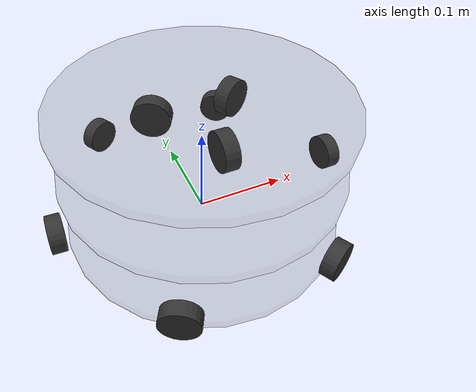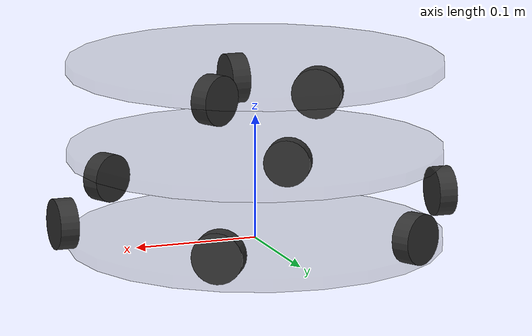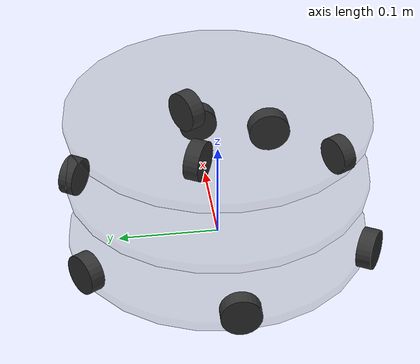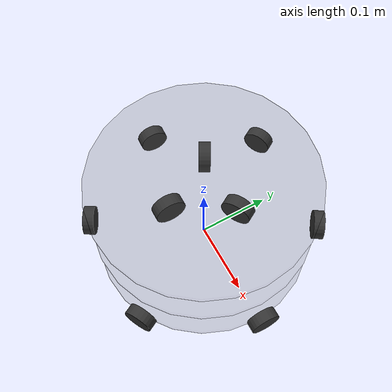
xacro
<?xml version="1.0"?>
<robot name="helix" xmlns:xacro="http://ros.org/wiki/xacro">
  <xacro:include filename="$(find helix_description)/urdf/helix.xacro" />
  <xacro:include filename="$(find helix_description)/urdf/helix.ros2_control.xacro" />

  <link name="world"/>

  <xacro:helix parent="world">
    <origin xyz="0 0 0" rpy="0 0 0" />
  </xacro:helix>

  <xacro:helix_ros2_control name="helix_ros2_control" />
</robot>

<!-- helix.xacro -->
<robot xmlns:xacro="http://ros.org/wiki/xacro">

<!-- Very basic representation of Helix motor base and pulleys -->
<!-- TODO - effort/velocity limits taken from dynamixel_hardware_examples package, not sure what they correpsond to wrt current-->

<material name='black'>
  <color rgba="0.2 0.2 0.2 1.0"/>
</material>
<material name='clear'>
  <color rgba="0.2 0.2 0.2 0.2"/>
</material>

<xacro:macro name="helix" params="parent *origin">
  <joint name="origin_to_base" type="fixed">
    <xacro:insert_block name="origin" />
    <parent link="${parent}" />
    <child link="base" />
    <axis xyz="0 0 1" />
  </joint>

  <!-- Base -->
  <link name="base">
    <visual>
      <origin xyz="0 0 0" rpy="0 0 0"/>
      <geometry>
        <cylinder length="0.01" radius="0.15"/>
      </geometry>
      <material name='clear'/>
    </visual>
    <visual>
      <origin xyz="0 0 0.07" rpy="0 0 0"/>
      <geometry>
        <cylinder length="0.01" radius="0.15"/>
      </geometry>
      <material name='clear'/>
    </visual>
     <visual>
      <origin xyz="0 0 0.14" rpy="0 0 0"/>
      <geometry>
        <cylinder length="0.01" radius="0.15"/>
      </geometry>
      <material name='clear'/>
    </visual>
  </link>

  <!-- Joint 0 -->
  <joint name="joint0" type="revolute">
    <parent link="base"/>
    <child link="link0"/>
    <origin xyz="-0.043 0.025 0.12" rpy="0 0 4.2"/>
    <axis xyz="1 0 0"/>
    <limit velocity="4.8" effort="1"/>
  </joint>

   <!-- Link 0 -->
  <link name="link0">
    <visual>
      <origin xyz="0 0 0" rpy="0 1.57 0"/>
      <geometry>
        <cylinder length="0.015" radius="0.02"/>
      </geometry>
      <material name="black"/>
    </visual>
  </link>

  <!-- Joint 1 -->
  <joint name="joint1" type="revolute">
    <parent link="base"/>
    <child link="link1"/>
    <origin xyz="0 -0.05 0.12" rpy="0 0 0"/>
    <axis xyz="1 0 0"/>
    <limit velocity="4.8" effort="1"/>
  </joint>

   <!-- Link 1 -->
  <link name="link1">
    <visual>
      <origin xyz="0 0 0" rpy="0 1.57 0"/>
      <geometry>
        <cylinder length="0.015" radius="0.02"/>
      </geometry>
      <material name="black"/>
    </visual>
  </link>

  <!-- Joint 2 -->
  <joint name="joint2" type="revolute">
    <parent link="base"/>
    <child link="link2"/>
    <origin xyz="0.043 0.025 0.12" rpy="0 0 2.1"/>
    <axis xyz="1 0 0"/>
    <limit velocity="4.8" effort="1"/>
  </joint>

   <!-- Link 2 -->
  <link name="link2">
    <visual>
      <origin xyz="0 0 0" rpy="0 1.57 0"/>
      <geometry>
        <cylinder length="0.015" radius="0.02"/>
      </geometry>
      <material name="black"/>
    </visual>
  </link>

  <!-- Joint 3 -->
  <joint name="joint3" type="revolute">
    <parent link="base"/>
    <child link="link3"/>
    <origin xyz="0.16 0 0.025" rpy="0 0 0"/>
    <axis xyz="1 0 0"/>
    <limit velocity="4.8" effort="1"/>
  </joint>

   <!-- Link 3 -->
  <link name="link3">
    <visual>
      <origin xyz="0 0 0" rpy="0 1.57 0"/>
      <geometry>
        <cylinder length="0.015" radius="0.02"/>
      </geometry>
      <material name="black"/>
    </visual>
  </link>

  <!-- Joint 4 -->
  <joint name="joint4" type="revolute">
    <parent link="base"/>
    <child link="link4"/>
    <origin xyz="-0.08 0.138 0.025" rpy="0 0 2.1"/>
    <axis xyz="1 0 0"/>
    <limit velocity="4.8" effort="1"/>
  </joint>

   <!-- Link 4 -->
  <link name="link4">
    <visual>
      <origin xyz="0 0 0" rpy="0 1.57 0"/>
      <geometry>
        <cylinder length="0.015" radius="0.02"/>
      </geometry>
      <material name="black"/>
    </visual>
  </link>

  <!-- Joint 5 -->
  <joint name="joint5" type="revolute">
    <parent link="base"/>
    <child link="link5"/>
    <origin xyz="-0.08 -0.138 0.025" rpy="0 0 4.2"/>
    <axis xyz="1 0 0"/>
    <limit velocity="4.8" effort="1"/>
  </joint>

   <!-- Link 5 -->
  <link name="link5">
    <visual>
      <origin xyz="0 0 0" rpy="0 1.57 0"/>
      <geometry>
        <cylinder length="0.015" radius="0.02"/>
      </geometry>
      <material name="black"/>
    </visual>
  </link>

  <!-- Joint 6 -->
  <joint name="joint6" type="revolute">
    <parent link="base"/>
    <child link="link6"/>
    <origin xyz="0.08 -0.138 0.025" rpy="0 0 5.2"/>
    <axis xyz="1 0 0"/>
    <limit velocity="4.8" effort="1"/>
  </joint>

   <!-- Link 6 -->
  <link name="link6">
    <visual>
      <origin xyz="0 0 0" rpy="0 1.57 0"/>
      <geometry>
        <cylinder length="0.015" radius="0.02"/>
      </geometry>
      <material name="black"/>
    </visual>
  </link>

  <!-- Joint 7 -->
  <joint name="joint7" type="revolute">
    <parent link="base"/>
    <child link="link7"/>
    <origin xyz="0.08 0.138 0.025" rpy="0 0 1.0"/>
    <axis xyz="1 0 0"/>
    <limit velocity="4.8" effort="1"/>
  </joint>

   <!-- Link 7 -->
  <link name="link7">
    <visual>
      <origin xyz="0 0 0" rpy="0 1.57 0"/>
      <geometry>
        <cylinder length="0.015" radius="0.02"/>
      </geometry>
      <material name="black"/>
    </visual>
  </link>

  <!-- Joint 8 -->
  <joint name="joint8" type="revolute">
    <parent link="base"/>
    <child link="link8"/>
    <origin xyz="-0.16 0 0.025" rpy="0 0 3.1"/>
    <axis xyz="1 0 0"/>
    <limit velocity="4.8" effort="1"/>
  </joint>

   <!-- Link 8 -->
  <link name="link8">
    <visual>
      <origin xyz="0 0 0" rpy="0 1.57 0"/>
      <geometry>
        <cylinder length="0.015" radius="0.02"/>
      </geometry>
      <material name="black"/>
    </visual>
  </link>

</xacro:macro>
</robot>
